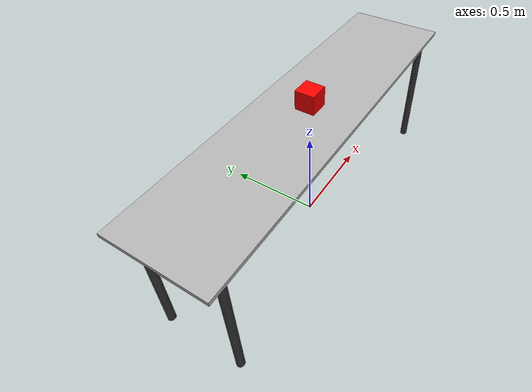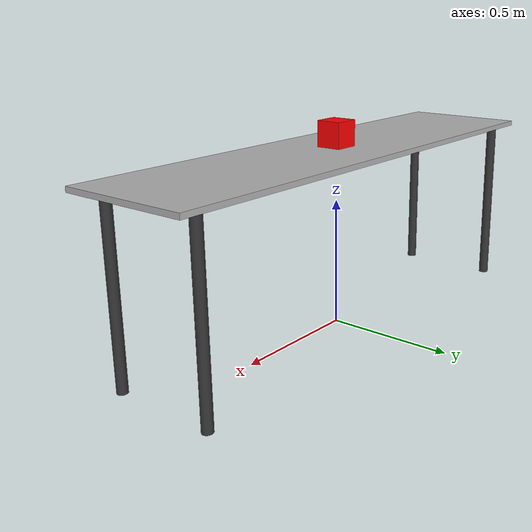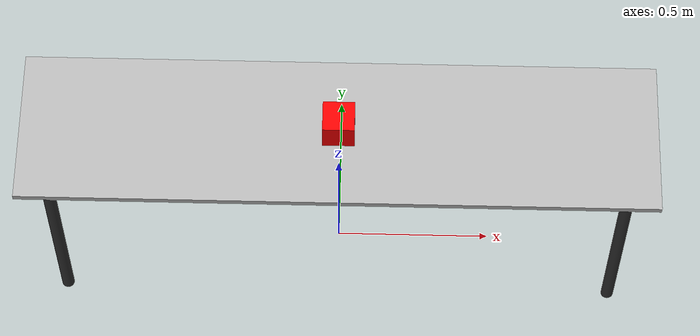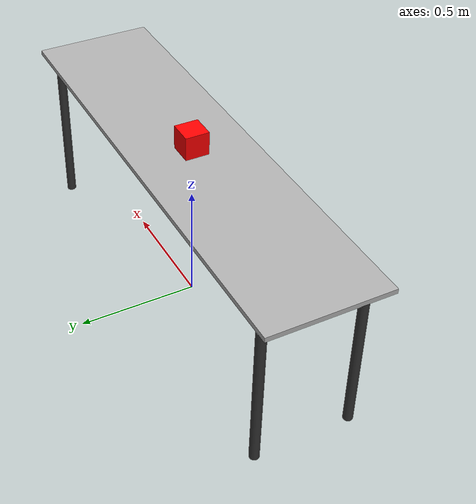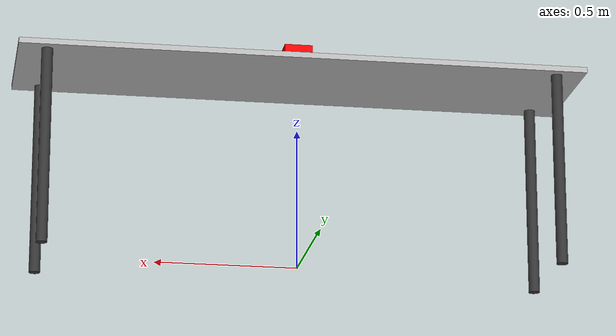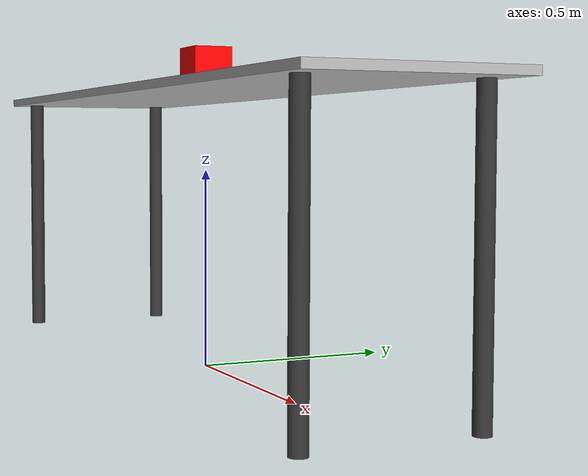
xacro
<?xml version="1.0"?>
<robot xmlns:xacro="http://www.ros.org/wiki/xacro" name="conveyor">
    <!-- Add a world link -->
    <link name="world"/>

    <!-- Define materials -->
    <material name="Gray">
        <color rgba="0.7 0.7 0.7 1.0"/>
    </material>

    <material name="Red">
        <color rgba="1.0 0.0 0.0 1.0"/>
    </material>

    <material name="Black">
        <color rgba="0.2 0.2 0.2 1.0"/>
    </material>

    <!-- Define table top -->
    <link name="table_top">
        <visual>
            <geometry>
                <box size="2 0.5 0.02"/>  <!-- Made slightly thinner for table top -->
            </geometry>
            <material name="Gray"/>
        </visual>
        <collision>
            <geometry>
                <box size="2 0.5 0.02"/>
            </geometry>
        </collision>
        <inertial>
            <mass value="50.0"/>
            <origin xyz="0 0 0" rpy="0 0 0"/>
            <inertia ixx="4.0" ixy="0.0" ixz="0.0"
                     iyy="4.0" iyz="0.0"
                     izz="4.0"/>
        </inertial>
    </link>

    <!-- Define table legs -->
    <!-- Front Left Leg -->
    <link name="front_left_leg">
        <visual>
            <geometry>
                <cylinder radius="0.02" length="0.7"/>
            </geometry>
            <material name="Black"/>
        </visual>
        <collision>
            <geometry>
                <cylinder radius="0.02" length="0.7"/>
            </geometry>
        </collision>
    </link>

    <!-- Front Right Leg -->
    <link name="front_right_leg">
        <visual>
            <geometry>
                <cylinder radius="0.02" length="0.7"/>
            </geometry>
            <material name="Black"/>
        </visual>
        <collision>
            <geometry>
                <cylinder radius="0.02" length="0.7"/>
            </geometry>
        </collision>
    </link>

    <!-- Back Left Leg -->
    <link name="back_left_leg">
        <visual>
            <geometry>
                <cylinder radius="0.02" length="0.7"/>
            </geometry>
            <material name="Black"/>
        </visual>
        <collision>
            <geometry>
                <cylinder radius="0.02" length="0.7"/>
            </geometry>
        </collision>
    </link>

    <!-- Back Right Leg -->
    <link name="back_right_leg">
        <visual>
            <geometry>
                <cylinder radius="0.02" length="0.7"/>
            </geometry>
            <material name="Black"/>
        </visual>
        <collision>
            <geometry>
                <cylinder radius="0.02" length="0.7"/>
            </geometry>
        </collision>
    </link>

    <!-- Connect world to table_top -->
    <joint name="world_to_table" type="fixed">
        <parent link="world"/>
        <child link="table_top"/>
        <origin xyz="0 0 0.7" rpy="0 0 0"/>  <!-- Raised to accommodate legs -->
    </joint>

    <!-- Connect legs to table top -->
    <joint name="table_to_front_left_leg" type="fixed">
        <parent link="table_top"/>
        <child link="front_left_leg"/>
        <origin xyz="0.9 0.2 -0.35" rpy="0 0 0"/>
    </joint>

    <joint name="table_to_front_right_leg" type="fixed">
        <parent link="table_top"/>
        <child link="front_right_leg"/>
        <origin xyz="0.9 -0.2 -0.35" rpy="0 0 0"/>
    </joint>

    <joint name="table_to_back_left_leg" type="fixed">
        <parent link="table_top"/>
        <child link="back_left_leg"/>
        <origin xyz="-0.9 0.2 -0.35" rpy="0 0 0"/>
    </joint>

    <joint name="table_to_back_right_leg" type="fixed">
        <parent link="table_top"/>
        <child link="back_right_leg"/>
        <origin xyz="-0.9 -0.2 -0.35" rpy="0 0 0"/>
    </joint>

    <!-- Define the moving cube -->
    <link name="moving_cube">
        <visual>
            <geometry>
                <box size="0.1 0.1 0.1"/>
            </geometry>
            <material name="Red"/>
        </visual>
        <collision>
            <geometry>
                <box size="0.1 0.1 0.1"/>
            </geometry>
        </collision>
        <inertial>
            <mass value="0.5"/>
            <origin xyz="0 0 0" rpy="0 0 0"/>
            <inertia ixx="0.001" ixy="0.0" ixz="0.0"
                     iyy="0.001" iyz="0.0"
                     izz="0.001"/>
        </inertial>
    </link>

    <!-- Add a joint to control the cube's movement -->
    <joint name="cube_belt_joint" type="prismatic">
        <parent link="table_top"/>
        <child link="moving_cube"/>
        <origin xyz="0 0 0.06" rpy="0 0 0"/>  <!-- Adjusted to sit on table top -->
        <axis xyz="1 0 0"/>
        <limit lower="-1.0" upper="1.0" effort="100" velocity="0.5"/>
        <dynamics damping="50.0" friction="1.0"/>
    </joint>

    <!-- Transmission for the joint -->
    <transmission name="cube_belt_trans">
        <type>transmission_interface/SimpleTransmission</type>
        <joint name="cube_belt_joint">
            <hardwareInterface>hardware_interface/PositionJointInterface</hardwareInterface>
        </joint>
        <actuator name="cube_belt_motor">
            <mechanicalReduction>1</mechanicalReduction>
            <hardwareInterface>hardware_interface/PositionJointInterface</hardwareInterface>
        </actuator>
    </transmission>

    <!-- Gazebo-specific elements -->
    <gazebo reference="table_top">
        <material>Gazebo/Gray</material>
        <static>true</static>
        <mu1>0.5</mu1>
        <mu2>0.5</mu2>
    </gazebo>

    <gazebo reference="front_left_leg">
        <material>Gazebo/Black</material>
        <static>true</static>
    </gazebo>

    <gazebo reference="front_right_leg">
        <material>Gazebo/Black</material>
        <static>true</static>
    </gazebo>

    <gazebo reference="back_left_leg">
        <material>Gazebo/Black</material>
        <static>true</static>
    </gazebo>

    <gazebo reference="back_right_leg">
        <material>Gazebo/Black</material>
        <static>true</static>
    </gazebo>

    <gazebo reference="moving_cube">
        <material>Gazebo/Red</material>
        <mu1>0.5</mu1>
        <mu2>0.5</mu2>
    </gazebo>

    <!-- Gazebo ROS control plugin -->
    <gazebo>
        <plugin name="gazebo_ros_control" filename="libgazebo_ros_control.so">
            <robotNamespace>/conveyor</robotNamespace>
            <robotSimType>gazebo_ros_control/DefaultRobotHWSim</robotSimType>
        </plugin>
    </gazebo>
</robot>
